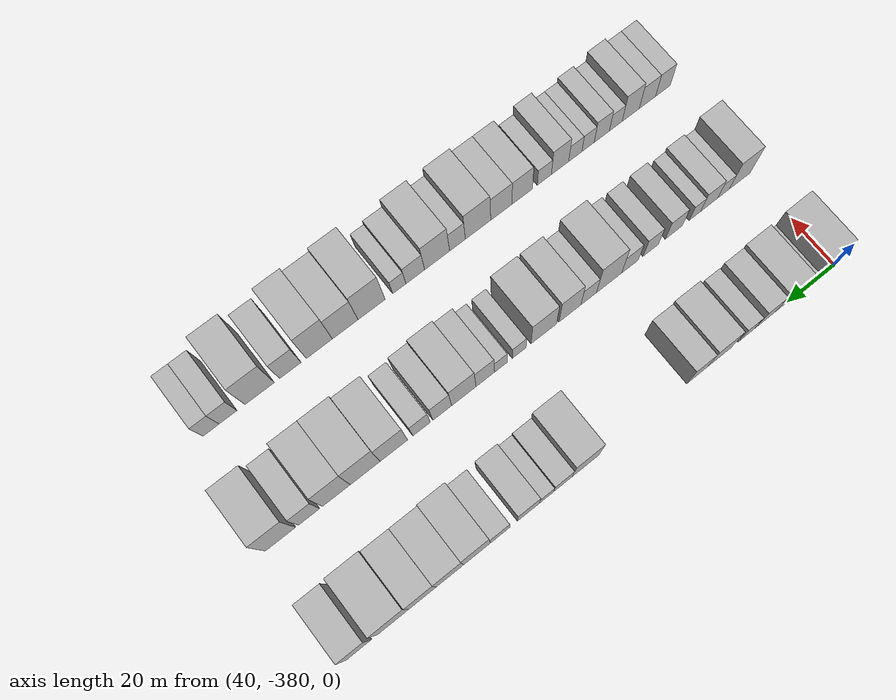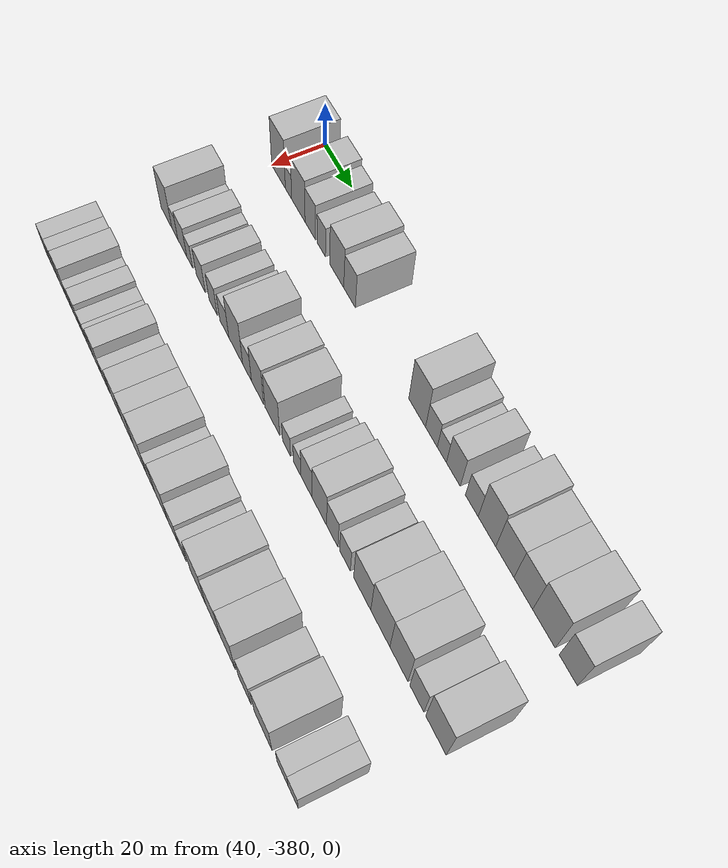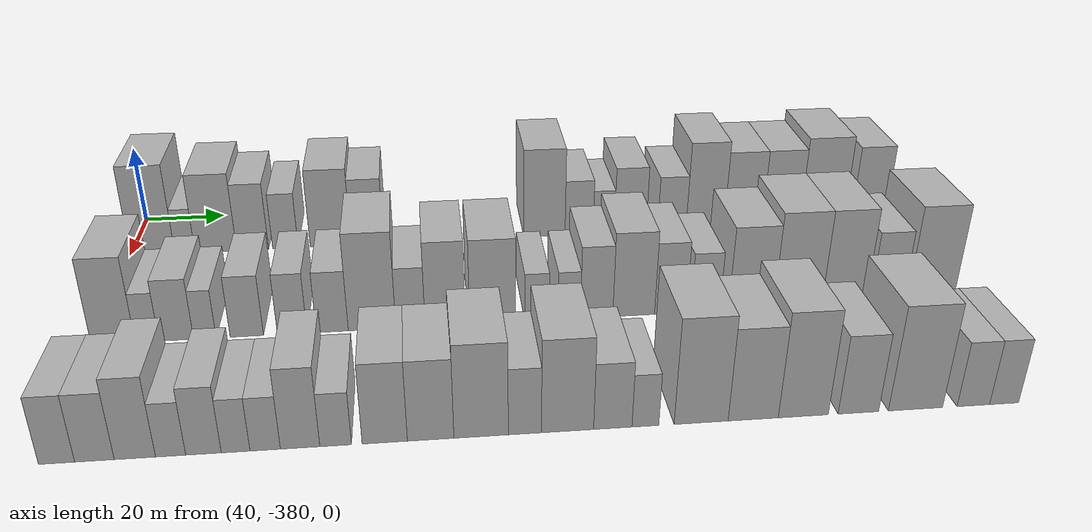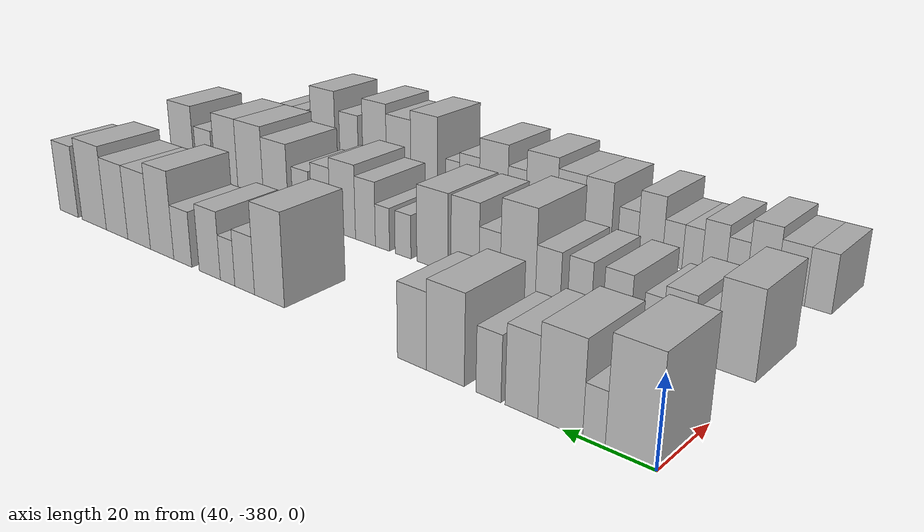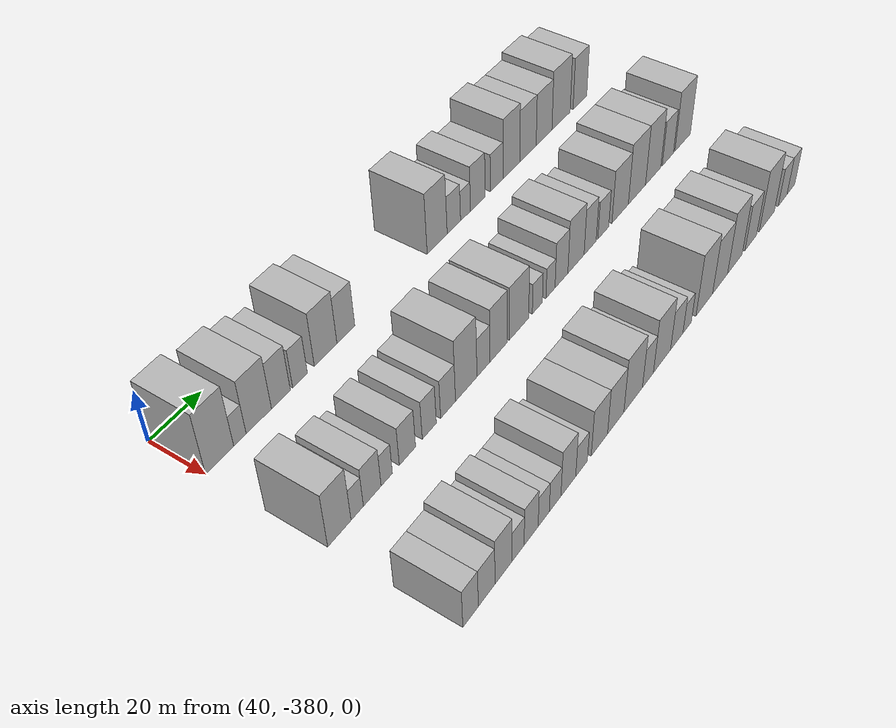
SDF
<sdf version="1.6">
 <world name="default">
  <model name="building_1">
   <static>1</static>
   <pose>50.0000 -374.6131 0 0.000000 0.000000 0.000000</pose>
   <link name="link">
    <pose>0 0 12.00 0 0 0</pose>
    <collision name="collision"><geometry><box><size>20.0000 10.7738 24.0000</size></box></geometry></collision>
    <visual name="visual">
     <cast_shadows>0</cast_shadows>
     <geometry><box><size>20.0000 10.7738 24.0000</size></box></geometry>
     <material>
      <script>
       <uri>model://HANNAS_wall/materials/scripts</uri>
       <uri>model://HANNAS_wall/materials/textures</uri>
       <name>vrc/HANNAS_wall</name>
      </script>
     </material>
    </visual>
   </link>
  </model>
  <model name="building_2">
   <static>1</static>
   <pose>50.0000 -366.7798 0 0.000000 0.000000 0.000000</pose>
   <link name="link">
    <pose>0 0 6.00 0 0 0</pose>
    <collision name="collision"><geometry><box><size>20.0000 4.8928 12.0000</size></box></geometry></collision>
    <visual name="visual">
     <cast_shadows>0</cast_shadows>
     <geometry><box><size>20.0000 4.8928 12.0000</size></box></geometry>
     <material>
      <script>
       <uri>model://HANNAS_wall/materials/scripts</uri>
       <uri>model://HANNAS_wall/materials/textures</uri>
       <name>vrc/HANNAS_wall</name>
      </script>
     </material>
    </visual>
   </link>
  </model>
  <model name="building_3">
   <static>1</static>
   <pose>50.0000 -359.2430 0 0.000000 0.000000 0.000000</pose>
   <link name="link">
    <pose>0 0 10.50 0 0 0</pose>
    <collision name="collision"><geometry><box><size>20.0000 10.1808 21.0000</size></box></geometry></collision>
    <visual name="visual">
     <cast_shadows>0</cast_shadows>
     <geometry><box><size>20.0000 10.1808 21.0000</size></box></geometry>
     <material>
      <script>
       <uri>model://HANNAS_wall/materials/scripts</uri>
       <uri>model://HANNAS_wall/materials/textures</uri>
       <name>vrc/HANNAS_wall</name>
      </script>
     </material>
    </visual>
   </link>
  </model>
  <model name="building_4">
   <static>1</static>
   <pose>50.0000 -350.2289 0 0.000000 0.000000 0.000000</pose>
   <link name="link">
    <pose>0 0 9.00 0 0 0</pose>
    <collision name="collision"><geometry><box><size>20.0000 7.8472 18.0000</size></box></geometry></collision>
    <visual name="visual">
     <cast_shadows>0</cast_shadows>
     <geometry><box><size>20.0000 7.8472 18.0000</size></box></geometry>
     <material>
      <script>
       <uri>model://HANNAS_wall/materials/scripts</uri>
       <uri>model://HANNAS_wall/materials/textures</uri>
       <name>vrc/HANNAS_wall</name>
      </script>
     </material>
    </visual>
   </link>
  </model>
  <model name="building_5">
   <static>1</static>
   <pose>50.0000 -342.1552 0 0.000000 0.000000 0.000000</pose>
   <link name="link">
    <pose>0 0 7.50 0 0 0</pose>
    <collision name="collision"><geometry><box><size>20.0000 6.3002 15.0000</size></box></geometry></collision>
    <visual name="visual">
     <cast_shadows>0</cast_shadows>
     <geometry><box><size>20.0000 6.3002 15.0000</size></box></geometry>
     <material>
      <script>
       <uri>model://HANNAS_wall/materials/scripts</uri>
       <uri>model://HANNAS_wall/materials/textures</uri>
       <name>vrc/HANNAS_wall</name>
      </script>
     </material>
    </visual>
   </link>
  </model>
  <model name="building_6">
   <static>1</static>
   <pose>50.0000 -330.9672 0 0.000000 0.000000 0.000000</pose>
   <link name="link">
    <pose>0 0 10.50 0 0 0</pose>
    <collision name="collision"><geometry><box><size>20.0000 10.0759 21.0000</size></box></geometry></collision>
    <visual name="visual">
     <cast_shadows>0</cast_shadows>
     <geometry><box><size>20.0000 10.0759 21.0000</size></box></geometry>
     <material>
      <script>
       <uri>model://HANNAS_wall/materials/scripts</uri>
       <uri>model://HANNAS_wall/materials/textures</uri>
       <name>vrc/HANNAS_wall</name>
      </script>
     </material>
    </visual>
   </link>
  </model>
  <model name="building_7">
   <static>1</static>
   <pose>50.0000 -321.8414 0 0.000000 0.000000 0.000000</pose>
   <link name="link">
    <pose>0 0 9.00 0 0 0</pose>
    <collision name="collision"><geometry><box><size>20.0000 8.1757 18.0000</size></box></geometry></collision>
    <visual name="visual">
     <cast_shadows>0</cast_shadows>
     <geometry><box><size>20.0000 8.1757 18.0000</size></box></geometry>
     <material>
      <script>
       <uri>model://HANNAS_wall/materials/scripts</uri>
       <uri>model://HANNAS_wall/materials/textures</uri>
       <name>vrc/HANNAS_wall</name>
      </script>
     </material>
    </visual>
   </link>
  </model>
  <model name="building_8">
   <static>1</static>
   <pose>50.0000 -276.8785 0 0.000000 0.000000 0.000000</pose>
   <link name="link">
    <pose>0 0 12.00 0 0 0</pose>
    <collision name="collision"><geometry><box><size>20.0000 10.5833 24.0000</size></box></geometry></collision>
    <visual name="visual">
     <cast_shadows>0</cast_shadows>
     <geometry><box><size>20.0000 10.5833 24.0000</size></box></geometry>
     <material>
      <script>
       <uri>model://HANNAS_wall/materials/scripts</uri>
       <uri>model://HANNAS_wall/materials/textures</uri>
       <name>vrc/HANNAS_wall</name>
      </script>
     </material>
    </visual>
   </link>
  </model>
  <model name="building_9">
   <static>1</static>
   <pose>50.0000 -267.9536 0 0.000000 0.000000 0.000000</pose>
   <link name="link">
    <pose>0 0 7.50 0 0 0</pose>
    <collision name="collision"><geometry><box><size>20.0000 7.2664 15.0000</size></box></geometry></collision>
    <visual name="visual">
     <cast_shadows>0</cast_shadows>
     <geometry><box><size>20.0000 7.2664 15.0000</size></box></geometry>
     <material>
      <script>
       <uri>model://HANNAS_wall/materials/scripts</uri>
       <uri>model://HANNAS_wall/materials/textures</uri>
       <name>vrc/HANNAS_wall</name>
      </script>
     </material>
    </visual>
   </link>
  </model>
  <model name="building_10">
   <static>1</static>
   <pose>50.0000 -261.5706 0 0.000000 0.000000 0.000000</pose>
   <link name="link">
    <pose>0 0 6.00 0 0 0</pose>
    <collision name="collision"><geometry><box><size>20.0000 5.4996 12.0000</size></box></geometry></collision>
    <visual name="visual">
     <cast_shadows>0</cast_shadows>
     <geometry><box><size>20.0000 5.4996 12.0000</size></box></geometry>
     <material>
      <script>
       <uri>model://HANNAS_wall/materials/scripts</uri>
       <uri>model://HANNAS_wall/materials/textures</uri>
       <name>vrc/HANNAS_wall</name>
      </script>
     </material>
    </visual>
   </link>
  </model>
  <model name="building_11">
   <static>1</static>
   <pose>50.0000 -254.6667 0 0.000000 0.000000 0.000000</pose>
   <link name="link">
    <pose>0 0 9.00 0 0 0</pose>
    <collision name="collision"><geometry><box><size>20.0000 8.3083 18.0000</size></box></geometry></collision>
    <visual name="visual">
     <cast_shadows>0</cast_shadows>
     <geometry><box><size>20.0000 8.3083 18.0000</size></box></geometry>
     <material>
      <script>
       <uri>model://HANNAS_wall/materials/scripts</uri>
       <uri>model://HANNAS_wall/materials/textures</uri>
       <name>vrc/HANNAS_wall</name>
      </script>
     </material>
    </visual>
   </link>
  </model>
  <model name="building_12">
   <static>1</static>
   <pose>50.0000 -243.8017 0 0.000000 0.000000 0.000000</pose>
   <link name="link">
    <pose>0 0 7.50 0 0 0</pose>
    <collision name="collision"><geometry><box><size>20.0000 7.4218 15.0000</size></box></geometry></collision>
    <visual name="visual">
     <cast_shadows>0</cast_shadows>
     <geometry><box><size>20.0000 7.4218 15.0000</size></box></geometry>
     <material>
      <script>
       <uri>model://HANNAS_wall/materials/scripts</uri>
       <uri>model://HANNAS_wall/materials/textures</uri>
       <name>vrc/HANNAS_wall</name>
      </script>
     </material>
    </visual>
   </link>
  </model>
  <model name="building_13">
   <static>1</static>
   <pose>50.0000 -235.0872 0 0.000000 0.000000 0.000000</pose>
   <link name="link">
    <pose>0 0 12.00 0 0 0</pose>
    <collision name="collision"><geometry><box><size>20.0000 10.0071 24.0000</size></box></geometry></collision>
    <visual name="visual">
     <cast_shadows>0</cast_shadows>
     <geometry><box><size>20.0000 10.0071 24.0000</size></box></geometry>
     <material>
      <script>
       <uri>model://HANNAS_wall/materials/scripts</uri>
       <uri>model://HANNAS_wall/materials/textures</uri>
       <name>vrc/HANNAS_wall</name>
      </script>
     </material>
    </visual>
   </link>
  </model>
  <model name="building_14">
   <static>1</static>
   <pose>50.0000 -225.0234 0 0.000000 0.000000 0.000000</pose>
   <link name="link">
    <pose>0 0 10.50 0 0 0</pose>
    <collision name="collision"><geometry><box><size>20.0000 10.1206 21.0000</size></box></geometry></collision>
    <visual name="visual">
     <cast_shadows>0</cast_shadows>
     <geometry><box><size>20.0000 10.1206 21.0000</size></box></geometry>
     <material>
      <script>
       <uri>model://HANNAS_wall/materials/scripts</uri>
       <uri>model://HANNAS_wall/materials/textures</uri>
       <name>vrc/HANNAS_wall</name>
      </script>
     </material>
    </visual>
   </link>
  </model>
  <model name="building_15">
   <static>1</static>
   <pose>50.0000 -214.9451 0 0.000000 0.000000 0.000000</pose>
   <link name="link">
    <pose>0 0 10.50 0 0 0</pose>
    <collision name="collision"><geometry><box><size>20.0000 10.0358 21.0000</size></box></geometry></collision>
    <visual name="visual">
     <cast_shadows>0</cast_shadows>
     <geometry><box><size>20.0000 10.0358 21.0000</size></box></geometry>
     <material>
      <script>
       <uri>model://HANNAS_wall/materials/scripts</uri>
       <uri>model://HANNAS_wall/materials/textures</uri>
       <name>vrc/HANNAS_wall</name>
      </script>
     </material>
    </visual>
   </link>
  </model>
  <model name="building_16">
   <static>1</static>
   <pose>50.0000 -203.9846 0 0.000000 0.000000 0.000000</pose>
   <link name="link">
    <pose>0 0 12.00 0 0 0</pose>
    <collision name="collision"><geometry><box><size>20.0000 11.8852 24.0000</size></box></geometry></collision>
    <visual name="visual">
     <cast_shadows>0</cast_shadows>
     <geometry><box><size>20.0000 11.8852 24.0000</size></box></geometry>
     <material>
      <script>
       <uri>model://HANNAS_wall/materials/scripts</uri>
       <uri>model://HANNAS_wall/materials/textures</uri>
       <name>vrc/HANNAS_wall</name>
      </script>
     </material>
    </visual>
   </link>
  </model>
  <model name="building_17">
   <static>1</static>
   <pose>50.0000 -191.4185 0 0.000000 0.000000 0.000000</pose>
   <link name="link">
    <pose>0 0 10.50 0 0 0</pose>
    <collision name="collision"><geometry><box><size>20.0000 9.2469 21.0000</size></box></geometry></collision>
    <visual name="visual">
     <cast_shadows>0</cast_shadows>
     <geometry><box><size>20.0000 9.2469 21.0000</size></box></geometry>
     <material>
      <script>
       <uri>model://HANNAS_wall/materials/scripts</uri>
       <uri>model://HANNAS_wall/materials/textures</uri>
       <name>vrc/HANNAS_wall</name>
      </script>
     </material>
    </visual>
   </link>
  </model>
  <model name="building_77">
   <static>1</static>
   <pose>90.0000 -375.3738 0 0.000000 0.000000 0.000000</pose>
   <link name="link">
    <pose>0 0 10.50 0 0 0</pose>
    <collision name="collision"><geometry><box><size>20.0000 9.2523 21.0000</size></box></geometry></collision>
    <visual name="visual">
     <cast_shadows>0</cast_shadows>
     <geometry><box><size>20.0000 9.2523 21.0000</size></box></geometry>
     <material>
      <script>
       <uri>model://HANNAS_wall/materials/scripts</uri>
       <uri>model://HANNAS_wall/materials/textures</uri>
       <name>vrc/HANNAS_wall</name>
      </script>
     </material>
    </visual>
   </link>
  </model>
  <model name="building_78">
   <static>1</static>
   <pose>90.0000 -368.2365 0 0.000000 0.000000 0.000000</pose>
   <link name="link">
    <pose>0 0 6.00 0 0 0</pose>
    <collision name="collision"><geometry><box><size>20.0000 5.0224 12.0000</size></box></geometry></collision>
    <visual name="visual">
     <cast_shadows>0</cast_shadows>
     <geometry><box><size>20.0000 5.0224 12.0000</size></box></geometry>
     <material>
      <script>
       <uri>model://HANNAS_wall/materials/scripts</uri>
       <uri>model://HANNAS_wall/materials/textures</uri>
       <name>vrc/HANNAS_wall</name>
      </script>
     </material>
    </visual>
   </link>
  </model>
  <model name="building_79">
   <static>1</static>
   <pose>90.0000 -362.0399 0 0.000000 0.000000 0.000000</pose>
   <link name="link">
    <pose>0 0 7.50 0 0 0</pose>
    <collision name="collision"><geometry><box><size>20.0000 7.3707 15.0000</size></box></geometry></collision>
    <visual name="visual">
     <cast_shadows>0</cast_shadows>
     <geometry><box><size>20.0000 7.3707 15.0000</size></box></geometry>
     <material>
      <script>
       <uri>model://HANNAS_wall/materials/scripts</uri>
       <uri>model://HANNAS_wall/materials/textures</uri>
       <name>vrc/HANNAS_wall</name>
      </script>
     </material>
    </visual>
   </link>
  </model>
  <model name="building_80">
   <static>1</static>
   <pose>90.0000 -355.9535 0 0.000000 0.000000 0.000000</pose>
   <link name="link">
    <pose>0 0 6.00 0 0 0</pose>
    <collision name="collision"><geometry><box><size>20.0000 4.8022 12.0000</size></box></geometry></collision>
    <visual name="visual">
     <cast_shadows>0</cast_shadows>
     <geometry><box><size>20.0000 4.8022 12.0000</size></box></geometry>
     <material>
      <script>
       <uri>model://HANNAS_wall/materials/scripts</uri>
       <uri>model://HANNAS_wall/materials/textures</uri>
       <name>vrc/HANNAS_wall</name>
      </script>
     </material>
    </visual>
   </link>
  </model>
  <model name="building_81">
   <static>1</static>
   <pose>90.0000 -346.9757 0 0.000000 0.000000 0.000000</pose>
   <link name="link">
    <pose>0 0 7.50 0 0 0</pose>
    <collision name="collision"><geometry><box><size>20.0000 7.1534 15.0000</size></box></geometry></collision>
    <visual name="visual">
     <cast_shadows>0</cast_shadows>
     <geometry><box><size>20.0000 7.1534 15.0000</size></box></geometry>
     <material>
      <script>
       <uri>model://HANNAS_wall/materials/scripts</uri>
       <uri>model://HANNAS_wall/materials/textures</uri>
       <name>vrc/HANNAS_wall</name>
      </script>
     </material>
    </visual>
   </link>
  </model>
  <model name="building_82">
   <static>1</static>
   <pose>90.0000 -337.2014 0 0.000000 0.000000 0.000000</pose>
   <link name="link">
    <pose>0 0 7.50 0 0 0</pose>
    <collision name="collision"><geometry><box><size>20.0000 6.3953 15.0000</size></box></geometry></collision>
    <visual name="visual">
     <cast_shadows>0</cast_shadows>
     <geometry><box><size>20.0000 6.3953 15.0000</size></box></geometry>
     <material>
      <script>
       <uri>model://HANNAS_wall/materials/scripts</uri>
       <uri>model://HANNAS_wall/materials/textures</uri>
       <name>vrc/HANNAS_wall</name>
      </script>
     </material>
    </visual>
   </link>
  </model>
  <model name="building_83">
   <static>1</static>
   <pose>90.0000 -328.5131 0 0.000000 0.000000 0.000000</pose>
   <link name="link">
    <pose>0 0 7.50 0 0 0</pose>
    <collision name="collision"><geometry><box><size>20.0000 6.9813 15.0000</size></box></geometry></collision>
    <visual name="visual">
     <cast_shadows>0</cast_shadows>
     <geometry><box><size>20.0000 6.9813 15.0000</size></box></geometry>
     <material>
      <script>
       <uri>model://HANNAS_wall/materials/scripts</uri>
       <uri>model://HANNAS_wall/materials/textures</uri>
       <name>vrc/HANNAS_wall</name>
      </script>
     </material>
    </visual>
   </link>
  </model>
  <model name="building_84">
   <static>1</static>
   <pose>90.0000 -319.8253 0 0.000000 0.000000 0.000000</pose>
   <link name="link">
    <pose>0 0 12.00 0 0 0</pose>
    <collision name="collision"><geometry><box><size>20.0000 10.3945 24.0000</size></box></geometry></collision>
    <visual name="visual">
     <cast_shadows>0</cast_shadows>
     <geometry><box><size>20.0000 10.3945 24.0000</size></box></geometry>
     <material>
      <script>
       <uri>model://HANNAS_wall/materials/scripts</uri>
       <uri>model://HANNAS_wall/materials/textures</uri>
       <name>vrc/HANNAS_wall</name>
      </script>
     </material>
    </visual>
   </link>
  </model>
  <model name="building_85">
   <static>1</static>
   <pose>90.0000 -311.4002 0 0.000000 0.000000 0.000000</pose>
   <link name="link">
    <pose>0 0 7.50 0 0 0</pose>
    <collision name="collision"><geometry><box><size>20.0000 6.4557 15.0000</size></box></geometry></collision>
    <visual name="visual">
     <cast_shadows>0</cast_shadows>
     <geometry><box><size>20.0000 6.4557 15.0000</size></box></geometry>
     <material>
      <script>
       <uri>model://HANNAS_wall/materials/scripts</uri>
       <uri>model://HANNAS_wall/materials/textures</uri>
       <name>vrc/HANNAS_wall</name>
      </script>
     </material>
    </visual>
   </link>
  </model>
  <model name="building_86">
   <static>1</static>
   <pose>90.0000 -303.7352 0 0.000000 0.000000 0.000000</pose>
   <link name="link">
    <pose>0 0 10.50 0 0 0</pose>
    <collision name="collision"><geometry><box><size>20.0000 8.8743 21.0000</size></box></geometry></collision>
    <visual name="visual">
     <cast_shadows>0</cast_shadows>
     <geometry><box><size>20.0000 8.8743 21.0000</size></box></geometry>
     <material>
      <script>
       <uri>model://HANNAS_wall/materials/scripts</uri>
       <uri>model://HANNAS_wall/materials/textures</uri>
       <name>vrc/HANNAS_wall</name>
      </script>
     </material>
    </visual>
   </link>
  </model>
  <model name="building_87">
   <static>1</static>
   <pose>90.0000 -293.1546 0 0.000000 0.000000 0.000000</pose>
   <link name="link">
    <pose>0 0 10.50 0 0 0</pose>
    <collision name="collision"><geometry><box><size>20.0000 10.2870 21.0000</size></box></geometry></collision>
    <visual name="visual">
     <cast_shadows>0</cast_shadows>
     <geometry><box><size>20.0000 10.2870 21.0000</size></box></geometry>
     <material>
      <script>
       <uri>model://HANNAS_wall/materials/scripts</uri>
       <uri>model://HANNAS_wall/materials/textures</uri>
       <name>vrc/HANNAS_wall</name>
      </script>
     </material>
    </visual>
   </link>
  </model>
  <model name="building_88">
   <static>1</static>
   <pose>90.0000 -283.2625 0 0.000000 0.000000 0.000000</pose>
   <link name="link">
    <pose>0 0 6.00 0 0 0</pose>
    <collision name="collision"><geometry><box><size>20.0000 5.4973 12.0000</size></box></geometry></collision>
    <visual name="visual">
     <cast_shadows>0</cast_shadows>
     <geometry><box><size>20.0000 5.4973 12.0000</size></box></geometry>
     <material>
      <script>
       <uri>model://HANNAS_wall/materials/scripts</uri>
       <uri>model://HANNAS_wall/materials/textures</uri>
       <name>vrc/HANNAS_wall</name>
      </script>
     </material>
    </visual>
   </link>
  </model>
  <model name="building_89">
   <static>1</static>
   <pose>90.0000 -275.9794 0 0.000000 0.000000 0.000000</pose>
   <link name="link">
    <pose>0 0 6.00 0 0 0</pose>
    <collision name="collision"><geometry><box><size>20.0000 5.0689 12.0000</size></box></geometry></collision>
    <visual name="visual">
     <cast_shadows>0</cast_shadows>
     <geometry><box><size>20.0000 5.0689 12.0000</size></box></geometry>
     <material>
      <script>
       <uri>model://HANNAS_wall/materials/scripts</uri>
       <uri>model://HANNAS_wall/materials/textures</uri>
       <name>vrc/HANNAS_wall</name>
      </script>
     </material>
    </visual>
   </link>
  </model>
  <model name="building_90">
   <static>1</static>
   <pose>90.0000 -269.7809 0 0.000000 0.000000 0.000000</pose>
   <link name="link">
    <pose>0 0 9.00 0 0 0</pose>
    <collision name="collision"><geometry><box><size>20.0000 7.3280 18.0000</size></box></geometry></collision>
    <visual name="visual">
     <cast_shadows>0</cast_shadows>
     <geometry><box><size>20.0000 7.3280 18.0000</size></box></geometry>
     <material>
      <script>
       <uri>model://HANNAS_wall/materials/scripts</uri>
       <uri>model://HANNAS_wall/materials/textures</uri>
       <name>vrc/HANNAS_wall</name>
      </script>
     </material>
    </visual>
   </link>
  </model>
  <model name="building_91">
   <static>1</static>
   <pose>90.0000 -261.3520 0 0.000000 0.000000 0.000000</pose>
   <link name="link">
    <pose>0 0 10.50 0 0 0</pose>
    <collision name="collision"><geometry><box><size>20.0000 9.5298 21.0000</size></box></geometry></collision>
    <visual name="visual">
     <cast_shadows>0</cast_shadows>
     <geometry><box><size>20.0000 9.5298 21.0000</size></box></geometry>
     <material>
      <script>
       <uri>model://HANNAS_wall/materials/scripts</uri>
       <uri>model://HANNAS_wall/materials/textures</uri>
       <name>vrc/HANNAS_wall</name>
      </script>
     </material>
    </visual>
   </link>
  </model>
  <model name="building_92">
   <static>1</static>
   <pose>90.0000 -252.9493 0 0.000000 0.000000 0.000000</pose>
   <link name="link">
    <pose>0 0 9.00 0 0 0</pose>
    <collision name="collision"><geometry><box><size>20.0000 7.2755 18.0000</size></box></geometry></collision>
    <visual name="visual">
     <cast_shadows>0</cast_shadows>
     <geometry><box><size>20.0000 7.2755 18.0000</size></box></geometry>
     <material>
      <script>
       <uri>model://HANNAS_wall/materials/scripts</uri>
       <uri>model://HANNAS_wall/materials/textures</uri>
       <name>vrc/HANNAS_wall</name>
      </script>
     </material>
    </visual>
   </link>
  </model>
  <model name="building_93">
   <static>1</static>
   <pose>90.0000 -244.9452 0 0.000000 0.000000 0.000000</pose>
   <link name="link">
    <pose>0 0 7.50 0 0 0</pose>
    <collision name="collision"><geometry><box><size>20.0000 6.7328 15.0000</size></box></geometry></collision>
    <visual name="visual">
     <cast_shadows>0</cast_shadows>
     <geometry><box><size>20.0000 6.7328 15.0000</size></box></geometry>
     <material>
      <script>
       <uri>model://HANNAS_wall/materials/scripts</uri>
       <uri>model://HANNAS_wall/materials/textures</uri>
       <name>vrc/HANNAS_wall</name>
      </script>
     </material>
    </visual>
   </link>
  </model>
  <model name="building_94">
   <static>1</static>
   <pose>90.0000 -234.3408 0 0.000000 0.000000 0.000000</pose>
   <link name="link">
    <pose>0 0 10.50 0 0 0</pose>
    <collision name="collision"><geometry><box><size>20.0000 10.4759 21.0000</size></box></geometry></collision>
    <visual name="visual">
     <cast_shadows>0</cast_shadows>
     <geometry><box><size>20.0000 10.4759 21.0000</size></box></geometry>
     <material>
      <script>
       <uri>model://HANNAS_wall/materials/scripts</uri>
       <uri>model://HANNAS_wall/materials/textures</uri>
       <name>vrc/HANNAS_wall</name>
      </script>
     </material>
    </visual>
   </link>
  </model>
  <model name="building_95">
   <static>1</static>
   <pose>90.0000 -223.4435 0 0.000000 0.000000 0.000000</pose>
   <link name="link">
    <pose>0 0 12.00 0 0 0</pose>
    <collision name="collision"><geometry><box><size>20.0000 11.3187 24.0000</size></box></geometry></collision>
    <visual name="visual">
     <cast_shadows>0</cast_shadows>
     <geometry><box><size>20.0000 11.3187 24.0000</size></box></geometry>
     <material>
      <script>
       <uri>model://HANNAS_wall/materials/scripts</uri>
       <uri>model://HANNAS_wall/materials/textures</uri>
       <name>vrc/HANNAS_wall</name>
      </script>
     </material>
    </visual>
   </link>
  </model>
  <model name="building_96">
   <static>1</static>
   <pose>90.0000 -212.5821 0 0.000000 0.000000 0.000000</pose>
   <link name="link">
    <pose>0 0 12.00 0 0 0</pose>
    <collision name="collision"><geometry><box><size>20.0000 10.4042 24.0000</size></box></geometry></collision>
    <visual name="visual">
     <cast_shadows>0</cast_shadows>
     <geometry><box><size>20.0000 10.4042 24.0000</size></box></geometry>
     <material>
      <script>
       <uri>model://HANNAS_wall/materials/scripts</uri>
       <uri>model://HANNAS_wall/materials/textures</uri>
       <name>vrc/HANNAS_wall</name>
      </script>
     </material>
    </visual>
   </link>
  </model>
  <model name="building_97">
   <static>1</static>
   <pose>90.0000 -202.4368 0 0.000000 0.000000 0.000000</pose>
   <link name="link">
    <pose>0 0 9.00 0 0 0</pose>
    <collision name="collision"><geometry><box><size>20.0000 7.8864 18.0000</size></box></geometry></collision>
    <visual name="visual">
     <cast_shadows>0</cast_shadows>
     <geometry><box><size>20.0000 7.8864 18.0000</size></box></geometry>
     <material>
      <script>
       <uri>model://HANNAS_wall/materials/scripts</uri>
       <uri>model://HANNAS_wall/materials/textures</uri>
       <name>vrc/HANNAS_wall</name>
      </script>
     </material>
    </visual>
   </link>
  </model>
  <model name="building_98">
   <static>1</static>
   <pose>90.0000 -191.9232 0 0.000000 0.000000 0.000000</pose>
   <link name="link">
    <pose>0 0 12.00 0 0 0</pose>
    <collision name="collision"><geometry><box><size>20.0000 11.1407 24.0000</size></box></geometry></collision>
    <visual name="visual">
     <cast_shadows>0</cast_shadows>
     <geometry><box><size>20.0000 11.1407 24.0000</size></box></geometry>
     <material>
      <script>
       <uri>model://HANNAS_wall/materials/scripts</uri>
       <uri>model://HANNAS_wall/materials/textures</uri>
       <name>vrc/HANNAS_wall</name>
      </script>
     </material>
    </visual>
   </link>
  </model>
  <model name="building_161">
   <static>1</static>
   <pose>130.0000 -376.7719 0 0.000000 0.000000 0.000000</pose>
   <link name="link">
    <pose>0 0 7.50 0 0 0</pose>
    <collision name="collision"><geometry><box><size>20.0000 6.4562 15.0000</size></box></geometry></collision>
    <visual name="visual">
     <cast_shadows>0</cast_shadows>
     <geometry><box><size>20.0000 6.4562 15.0000</size></box></geometry>
     <material>
      <script>
       <uri>model://HANNAS_wall/materials/scripts</uri>
       <uri>model://HANNAS_wall/materials/textures</uri>
       <name>vrc/HANNAS_wall</name>
      </script>
     </material>
    </visual>
   </link>
  </model>
  <model name="building_162">
   <static>1</static>
   <pose>130.0000 -369.9879 0 0.000000 0.000000 0.000000</pose>
   <link name="link">
    <pose>0 0 7.50 0 0 0</pose>
    <collision name="collision"><geometry><box><size>20.0000 7.1119 15.0000</size></box></geometry></collision>
    <visual name="visual">
     <cast_shadows>0</cast_shadows>
     <geometry><box><size>20.0000 7.1119 15.0000</size></box></geometry>
     <material>
      <script>
       <uri>model://HANNAS_wall/materials/scripts</uri>
       <uri>model://HANNAS_wall/materials/textures</uri>
       <name>vrc/HANNAS_wall</name>
      </script>
     </material>
    </visual>
   </link>
  </model>
  <model name="building_163">
   <static>1</static>
   <pose>130.0000 -362.7034 0 0.000000 0.000000 0.000000</pose>
   <link name="link">
    <pose>0 0 9.00 0 0 0</pose>
    <collision name="collision"><geometry><box><size>20.0000 7.4571 18.0000</size></box></geometry></collision>
    <visual name="visual">
     <cast_shadows>0</cast_shadows>
     <geometry><box><size>20.0000 7.4571 18.0000</size></box></geometry>
     <material>
      <script>
       <uri>model://HANNAS_wall/materials/scripts</uri>
       <uri>model://HANNAS_wall/materials/textures</uri>
       <name>vrc/HANNAS_wall</name>
      </script>
     </material>
    </visual>
   </link>
  </model>
  <model name="building_164">
   <static>1</static>
   <pose>130.0000 -356.2314 0 0.000000 0.000000 0.000000</pose>
   <link name="link">
    <pose>0 0 6.00 0 0 0</pose>
    <collision name="collision"><geometry><box><size>20.0000 5.4868 12.0000</size></box></geometry></collision>
    <visual name="visual">
     <cast_shadows>0</cast_shadows>
     <geometry><box><size>20.0000 5.4868 12.0000</size></box></geometry>
     <material>
      <script>
       <uri>model://HANNAS_wall/materials/scripts</uri>
       <uri>model://HANNAS_wall/materials/textures</uri>
       <name>vrc/HANNAS_wall</name>
      </script>
     </material>
    </visual>
   </link>
  </model>
  <model name="building_165">
   <static>1</static>
   <pose>130.0000 -350.2349 0 0.000000 0.000000 0.000000</pose>
   <link name="link">
    <pose>0 0 7.50 0 0 0</pose>
    <collision name="collision"><geometry><box><size>20.0000 6.5063 15.0000</size></box></geometry></collision>
    <visual name="visual">
     <cast_shadows>0</cast_shadows>
     <geometry><box><size>20.0000 6.5063 15.0000</size></box></geometry>
     <material>
      <script>
       <uri>model://HANNAS_wall/materials/scripts</uri>
       <uri>model://HANNAS_wall/materials/textures</uri>
       <name>vrc/HANNAS_wall</name>
      </script>
     </material>
    </visual>
   </link>
  </model>
  <model name="building_166">
   <static>1</static>
   <pose>130.0000 -344.3513 0 0.000000 0.000000 0.000000</pose>
   <link name="link">
    <pose>0 0 6.00 0 0 0</pose>
    <collision name="collision"><geometry><box><size>20.0000 5.2608 12.0000</size></box></geometry></collision>
    <visual name="visual">
     <cast_shadows>0</cast_shadows>
     <geometry><box><size>20.0000 5.2608 12.0000</size></box></geometry>
     <material>
      <script>
       <uri>model://HANNAS_wall/materials/scripts</uri>
       <uri>model://HANNAS_wall/materials/textures</uri>
       <name>vrc/HANNAS_wall</name>
      </script>
     </material>
    </visual>
   </link>
  </model>
  <model name="building_167">
   <static>1</static>
   <pose>130.0000 -338.9157 0 0.000000 0.000000 0.000000</pose>
   <link name="link">
    <pose>0 0 6.00 0 0 0</pose>
    <collision name="collision"><geometry><box><size>20.0000 5.6103 12.0000</size></box></geometry></collision>
    <visual name="visual">
     <cast_shadows>0</cast_shadows>
     <geometry><box><size>20.0000 5.6103 12.0000</size></box></geometry>
     <material>
      <script>
       <uri>model://HANNAS_wall/materials/scripts</uri>
       <uri>model://HANNAS_wall/materials/textures</uri>
       <name>vrc/HANNAS_wall</name>
      </script>
     </material>
    </visual>
   </link>
  </model>
  <model name="building_168">
   <static>1</static>
   <pose>130.0000 -332.4544 0 0.000000 0.000000 0.000000</pose>
   <link name="link">
    <pose>0 0 9.00 0 0 0</pose>
    <collision name="collision"><geometry><box><size>20.0000 7.3123 18.0000</size></box></geometry></collision>
    <visual name="visual">
     <cast_shadows>0</cast_shadows>
     <geometry><box><size>20.0000 7.3123 18.0000</size></box></geometry>
     <material>
      <script>
       <uri>model://HANNAS_wall/materials/scripts</uri>
       <uri>model://HANNAS_wall/materials/textures</uri>
       <name>vrc/HANNAS_wall</name>
      </script>
     </material>
    </visual>
   </link>
  </model>
  <model name="building_169">
   <static>1</static>
   <pose>130.0000 -325.8493 0 0.000000 0.000000 0.000000</pose>
   <link name="link">
    <pose>0 0 6.00 0 0 0</pose>
    <collision name="collision"><geometry><box><size>20.0000 5.8978 12.0000</size></box></geometry></collision>
    <visual name="visual">
     <cast_shadows>0</cast_shadows>
     <geometry><box><size>20.0000 5.8978 12.0000</size></box></geometry>
     <material>
      <script>
       <uri>model://HANNAS_wall/materials/scripts</uri>
       <uri>model://HANNAS_wall/materials/textures</uri>
       <name>vrc/HANNAS_wall</name>
      </script>
     </material>
    </visual>
   </link>
  </model>
  <model name="building_170">
   <static>1</static>
   <pose>130.0000 -316.6530 0 0.000000 0.000000 0.000000</pose>
   <link name="link">
    <pose>0 0 9.00 0 0 0</pose>
    <collision name="collision"><geometry><box><size>20.0000 8.4949 18.0000</size></box></geometry></collision>
    <visual name="visual">
     <cast_shadows>0</cast_shadows>
     <geometry><box><size>20.0000 8.4949 18.0000</size></box></geometry>
     <material>
      <script>
       <uri>model://HANNAS_wall/materials/scripts</uri>
       <uri>model://HANNAS_wall/materials/textures</uri>
       <name>vrc/HANNAS_wall</name>
      </script>
     </material>
    </visual>
   </link>
  </model>
  <model name="building_171">
   <static>1</static>
   <pose>130.0000 -308.0022 0 0.000000 0.000000 0.000000</pose>
   <link name="link">
    <pose>0 0 9.00 0 0 0</pose>
    <collision name="collision"><geometry><box><size>20.0000 8.8067 18.0000</size></box></geometry></collision>
    <visual name="visual">
     <cast_shadows>0</cast_shadows>
     <geometry><box><size>20.0000 8.8067 18.0000</size></box></geometry>
     <material>
      <script>
       <uri>model://HANNAS_wall/materials/scripts</uri>
       <uri>model://HANNAS_wall/materials/textures</uri>
       <name>vrc/HANNAS_wall</name>
      </script>
     </material>
    </visual>
   </link>
  </model>
  <model name="building_172">
   <static>1</static>
   <pose>130.0000 -298.3983 0 0.000000 0.000000 0.000000</pose>
   <link name="link">
    <pose>0 0 10.50 0 0 0</pose>
    <collision name="collision"><geometry><box><size>20.0000 10.4011 21.0000</size></box></geometry></collision>
    <visual name="visual">
     <cast_shadows>0</cast_shadows>
     <geometry><box><size>20.0000 10.4011 21.0000</size></box></geometry>
     <material>
      <script>
       <uri>model://HANNAS_wall/materials/scripts</uri>
       <uri>model://HANNAS_wall/materials/textures</uri>
       <name>vrc/HANNAS_wall</name>
      </script>
     </material>
    </visual>
   </link>
  </model>
  <model name="building_173">
   <static>1</static>
   <pose>130.0000 -290.0288 0 0.000000 0.000000 0.000000</pose>
   <link name="link">
    <pose>0 0 7.50 0 0 0</pose>
    <collision name="collision"><geometry><box><size>20.0000 6.3379 15.0000</size></box></geometry></collision>
    <visual name="visual">
     <cast_shadows>0</cast_shadows>
     <geometry><box><size>20.0000 6.3379 15.0000</size></box></geometry>
     <material>
      <script>
       <uri>model://HANNAS_wall/materials/scripts</uri>
       <uri>model://HANNAS_wall/materials/textures</uri>
       <name>vrc/HANNAS_wall</name>
      </script>
     </material>
    </visual>
   </link>
  </model>
  <model name="building_174">
   <static>1</static>
   <pose>130.0000 -281.8082 0 0.000000 0.000000 0.000000</pose>
   <link name="link">
    <pose>0 0 10.50 0 0 0</pose>
    <collision name="collision"><geometry><box><size>20.0000 10.1033 21.0000</size></box></geometry></collision>
    <visual name="visual">
     <cast_shadows>0</cast_shadows>
     <geometry><box><size>20.0000 10.1033 21.0000</size></box></geometry>
     <material>
      <script>
       <uri>model://HANNAS_wall/materials/scripts</uri>
       <uri>model://HANNAS_wall/materials/textures</uri>
       <name>vrc/HANNAS_wall</name>
      </script>
     </material>
    </visual>
   </link>
  </model>
  <model name="building_175">
   <static>1</static>
   <pose>130.0000 -273.0210 0 0.000000 0.000000 0.000000</pose>
   <link name="link">
    <pose>0 0 7.50 0 0 0</pose>
    <collision name="collision"><geometry><box><size>20.0000 7.4712 15.0000</size></box></geometry></collision>
    <visual name="visual">
     <cast_shadows>0</cast_shadows>
     <geometry><box><size>20.0000 7.4712 15.0000</size></box></geometry>
     <material>
      <script>
       <uri>model://HANNAS_wall/materials/scripts</uri>
       <uri>model://HANNAS_wall/materials/textures</uri>
       <name>vrc/HANNAS_wall</name>
      </script>
     </material>
    </visual>
   </link>
  </model>
  <model name="building_176">
   <static>1</static>
   <pose>130.0000 -266.6531 0 0.000000 0.000000 0.000000</pose>
   <link name="link">
    <pose>0 0 6.00 0 0 0</pose>
    <collision name="collision"><geometry><box><size>20.0000 5.2647 12.0000</size></box></geometry></collision>
    <visual name="visual">
     <cast_shadows>0</cast_shadows>
     <geometry><box><size>20.0000 5.2647 12.0000</size></box></geometry>
     <material>
      <script>
       <uri>model://HANNAS_wall/materials/scripts</uri>
       <uri>model://HANNAS_wall/materials/textures</uri>
       <name>vrc/HANNAS_wall</name>
      </script>
     </material>
    </visual>
   </link>
  </model>
  <model name="building_177">
   <static>1</static>
   <pose>130.0000 -255.6863 0 0.000000 0.000000 0.000000</pose>
   <link name="link">
    <pose>0 0 12.00 0 0 0</pose>
    <collision name="collision"><geometry><box><size>20.0000 10.6688 24.0000</size></box></geometry></collision>
    <visual name="visual">
     <cast_shadows>0</cast_shadows>
     <geometry><box><size>20.0000 10.6688 24.0000</size></box></geometry>
     <material>
      <script>
       <uri>model://HANNAS_wall/materials/scripts</uri>
       <uri>model://HANNAS_wall/materials/textures</uri>
       <name>vrc/HANNAS_wall</name>
      </script>
     </material>
    </visual>
   </link>
  </model>
  <model name="building_178">
   <static>1</static>
   <pose>130.0000 -245.3454 0 0.000000 0.000000 0.000000</pose>
   <link name="link">
    <pose>0 0 10.50 0 0 0</pose>
    <collision name="collision"><geometry><box><size>20.0000 10.0129 21.0000</size></box></geometry></collision>
    <visual name="visual">
     <cast_shadows>0</cast_shadows>
     <geometry><box><size>20.0000 10.0129 21.0000</size></box></geometry>
     <material>
      <script>
       <uri>model://HANNAS_wall/materials/scripts</uri>
       <uri>model://HANNAS_wall/materials/textures</uri>
       <name>vrc/HANNAS_wall</name>
      </script>
     </material>
    </visual>
   </link>
  </model>
  <model name="building_179">
   <static>1</static>
   <pose>130.0000 -235.3161 0 0.000000 0.000000 0.000000</pose>
   <link name="link">
    <pose>0 0 12.00 0 0 0</pose>
    <collision name="collision"><geometry><box><size>20.0000 10.0459 24.0000</size></box></geometry></collision>
    <visual name="visual">
     <cast_shadows>0</cast_shadows>
     <geometry><box><size>20.0000 10.0459 24.0000</size></box></geometry>
     <material>
      <script>
       <uri>model://HANNAS_wall/materials/scripts</uri>
       <uri>model://HANNAS_wall/materials/textures</uri>
       <name>vrc/HANNAS_wall</name>
      </script>
     </material>
    </visual>
   </link>
  </model>
  <model name="building_180">
   <static>1</static>
   <pose>130.0000 -224.1865 0 0.000000 0.000000 0.000000</pose>
   <link name="link">
    <pose>0 0 9.00 0 0 0</pose>
    <collision name="collision"><geometry><box><size>20.0000 8.2132 18.0000</size></box></geometry></collision>
    <visual name="visual">
     <cast_shadows>0</cast_shadows>
     <geometry><box><size>20.0000 8.2132 18.0000</size></box></geometry>
     <material>
      <script>
       <uri>model://HANNAS_wall/materials/scripts</uri>
       <uri>model://HANNAS_wall/materials/textures</uri>
       <name>vrc/HANNAS_wall</name>
      </script>
     </material>
    </visual>
   </link>
  </model>
  <model name="building_181">
   <static>1</static>
   <pose>130.0000 -212.5377 0 0.000000 0.000000 0.000000</pose>
   <link name="link">
    <pose>0 0 12.00 0 0 0</pose>
    <collision name="collision"><geometry><box><size>20.0000 11.0843 24.0000</size></box></geometry></collision>
    <visual name="visual">
     <cast_shadows>0</cast_shadows>
     <geometry><box><size>20.0000 11.0843 24.0000</size></box></geometry>
     <material>
      <script>
       <uri>model://HANNAS_wall/materials/scripts</uri>
       <uri>model://HANNAS_wall/materials/textures</uri>
       <name>vrc/HANNAS_wall</name>
      </script>
     </material>
    </visual>
   </link>
  </model>
  <model name="building_182">
   <static>1</static>
   <pose>130.0000 -200.6475 0 0.000000 0.000000 0.000000</pose>
   <link name="link">
    <pose>0 0 7.50 0 0 0</pose>
    <collision name="collision"><geometry><box><size>20.0000 6.6963 15.0000</size></box></geometry></collision>
    <visual name="visual">
     <cast_shadows>0</cast_shadows>
     <geometry><box><size>20.0000 6.6963 15.0000</size></box></geometry>
     <material>
      <script>
       <uri>model://HANNAS_wall/materials/scripts</uri>
       <uri>model://HANNAS_wall/materials/textures</uri>
       <name>vrc/HANNAS_wall</name>
      </script>
     </material>
    </visual>
   </link>
  </model>
  <model name="building_183">
   <static>1</static>
   <pose>130.0000 -194.2791 0 0.000000 0.000000 0.000000</pose>
   <link name="link">
    <pose>0 0 7.50 0 0 0</pose>
    <collision name="collision"><geometry><box><size>20.0000 6.0404 15.0000</size></box></geometry></collision>
    <visual name="visual">
     <cast_shadows>0</cast_shadows>
     <geometry><box><size>20.0000 6.0404 15.0000</size></box></geometry>
     <material>
      <script>
       <uri>model://HANNAS_wall/materials/scripts</uri>
       <uri>model://HANNAS_wall/materials/textures</uri>
       <name>vrc/HANNAS_wall</name>
      </script>
     </material>
    </visual>
   </link>
  </model>
 </world>
</sdf>
